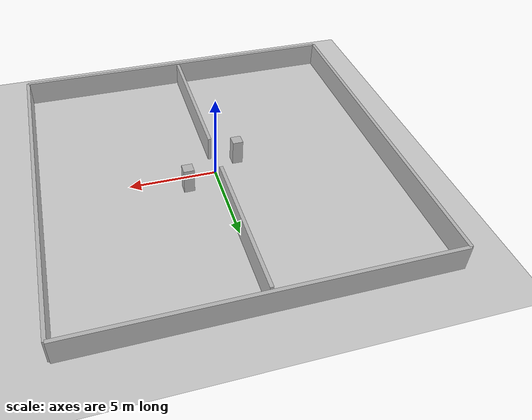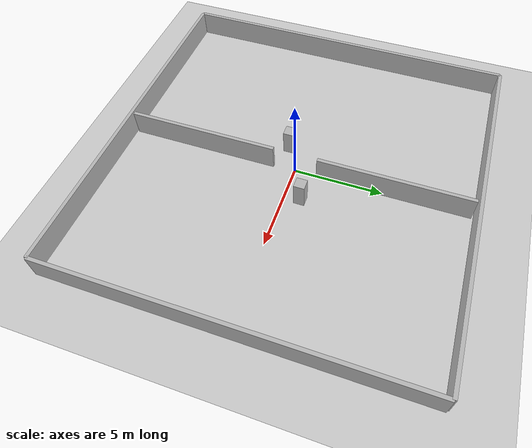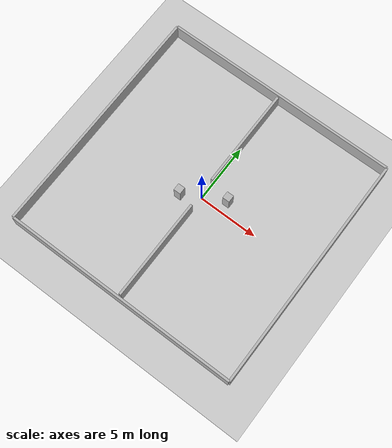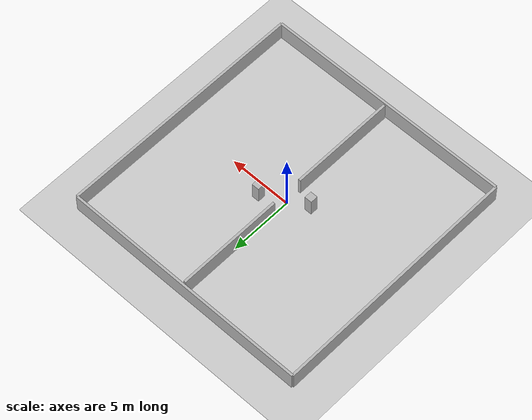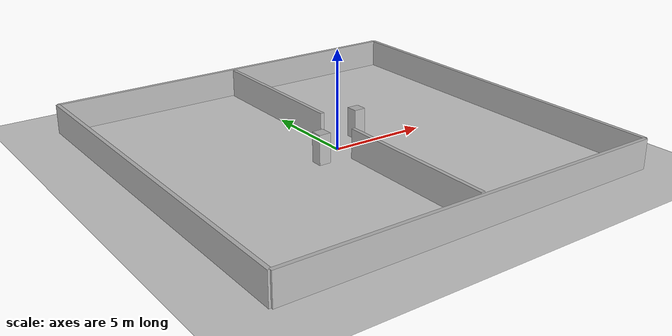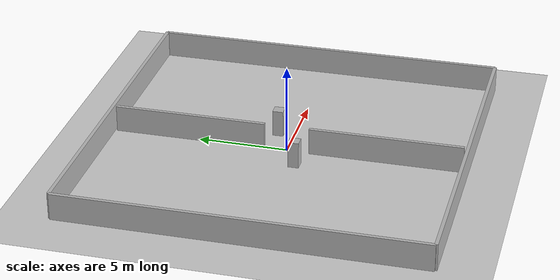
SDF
<?xml version="1.0" ?>
<sdf version="1.6">
<world name="corridor_swap">
  <!-- Gazebo ROS State Plugin - provides /set_entity_state service -->
  <plugin name='gazebo_ros_state' filename='libgazebo_ros_state.so'>
    <ros>
      <argument>model_states:=model_states_demo</argument>
    </ros>
    <update_rate>1.0</update_rate>
  </plugin>

  <include>
    <uri>model://sun</uri>
  </include>
  <include>
    <uri>model://ground_plane</uri>
  </include>

  <model name="b_north">
    <static>true</static>
    <pose>0 10.0 0.75 0 0 0</pose>
    <link name="link">
      <collision name="collision">
        <geometry>
          <box><size>20.0 0.2 1.5</size></box>
        </geometry>
      </collision>
      <visual name="visual">
        <geometry>
          <box><size>20.0 0.2 1.5</size></box>
        </geometry>
      </visual>
    </link>
  </model>

  <model name="b_south">
    <static>true</static>
    <pose>0 -10.0 0.75 0 0 0</pose>
    <link name="link">
      <collision name="collision">
        <geometry>
          <box><size>20.0 0.2 1.5</size></box>
        </geometry>
      </collision>
      <visual name="visual">
        <geometry>
          <box><size>20.0 0.2 1.5</size></box>
        </geometry>
      </visual>
    </link>
  </model>

  <model name="b_east">
    <static>true</static>
    <pose>10.0 0 0.75 0 0 0</pose>
    <link name="link">
      <collision name="collision">
        <geometry>
          <box><size>0.2 20.0 1.5</size></box>
        </geometry>
      </collision>
      <visual name="visual">
        <geometry>
          <box><size>0.2 20.0 1.5</size></box>
        </geometry>
      </visual>
    </link>
  </model>

  <model name="b_west">
    <static>true</static>
    <pose>-10.0 0 0.75 0 0 0</pose>
    <link name="link">
      <collision name="collision">
        <geometry>
          <box><size>0.2 20.0 1.5</size></box>
        </geometry>
      </collision>
      <visual name="visual">
        <geometry>
          <box><size>0.2 20.0 1.5</size></box>
        </geometry>
      </visual>
    </link>
  </model>

  <model name="divider_lower">
    <static>true</static>
    <pose>0 -5.525 0.75 0 0 0</pose>
    <link name="link">
      <collision name="collision">
        <geometry>
          <box><size>0.2 8.55 1.5</size></box>
        </geometry>
      </collision>
      <visual name="visual">
        <geometry>
          <box><size>0.2 8.55 1.5</size></box>
        </geometry>
      </visual>
    </link>
  </model>

  <model name="divider_upper">
    <static>true</static>
    <pose>0 5.525 0.75 0 0 0</pose>
    <link name="link">
      <collision name="collision">
        <geometry>
          <box><size>0.2 8.55 1.5</size></box>
        </geometry>
      </collision>
      <visual name="visual">
        <geometry>
          <box><size>0.2 8.55 1.5</size></box>
        </geometry>
      </visual>
    </link>
  </model>

  <model name="pillar_left">
    <static>true</static>
    <pose>-1.5 -0.8 0.75 0 0 0</pose>
    <link name="link">
      <collision name="collision">
        <geometry>
          <box><size>0.6 0.6 1.5</size></box>
        </geometry>
      </collision>
      <visual name="visual">
        <geometry>
          <box><size>0.6 0.6 1.5</size></box>
        </geometry>
      </visual>
    </link>
  </model>

  <model name="pillar_right">
    <static>true</static>
    <pose>1.8 0.9 0.75 0 0 0</pose>
    <link name="link">
      <collision name="collision">
        <geometry>
          <box><size>0.6 0.6 1.5</size></box>
        </geometry>
      </collision>
      <visual name="visual">
        <geometry>
          <box><size>0.6 0.6 1.5</size></box>
        </geometry>
      </visual>
    </link>
  </model>

</world>
</sdf>
